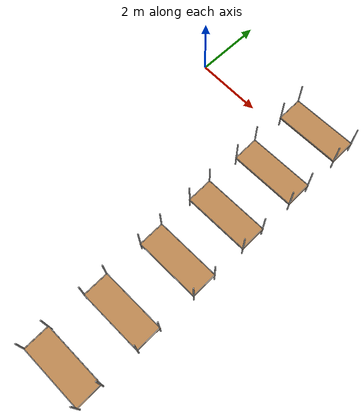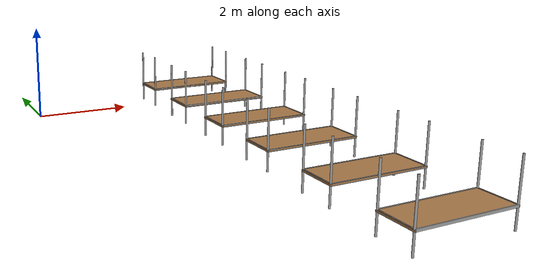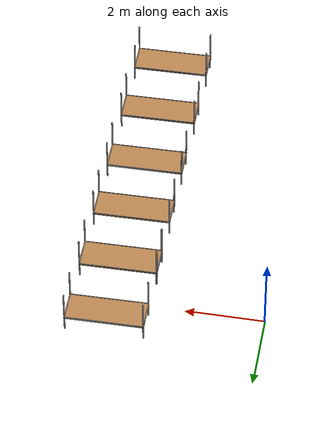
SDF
<sdf version="1.6">
 <world name="default">
  <gravity>0 0 -9.8</gravity>
  <physics default="0" name="default_physics" type="ode">
   <max_step_size>0.001</max_step_size>
   <real_time_factor>1</real_time_factor>
   <real_time_update_rate>1000</real_time_update_rate>
  </physics>
  <model name="pallet_0">
   <include><uri>model://warehouse_pallet3</uri></include>
   <pose>3.728 0.57943 0 0 0 1.588</pose>
  </model>
  <model name="pallet_1">
   <include><uri>model://warehouse_pallet3</uri></include>
   <pose>3.728 -4.827049 0 0 0 1.588</pose>
  </model>
  <model name="pallet_2">
   <include><uri>model://warehouse_pallet3</uri></include>
   <pose>3.728  -8.6651 0 0 0 1.588</pose>
  </model>
  <model name="pallet_3">
   <include><uri>model://warehouse_pallet3</uri></include>
   <pose>3.728  -1.242668 0 0 0 1.588</pose>
  </model>
  <model name="pallet_4">
   <include><uri>model://warehouse_pallet3</uri></include>
   <pose>3.728  -3.038551 0 0 0 1.588</pose>
  </model>
  <model name="pallet_5">
   <include><uri>model://warehouse_pallet3</uri></include>
   <pose>3.728  -6.750542 0 0 0 1.588</pose>
  </model>
  <light name="Warehouse_CeilingLight_003" type="point">
   <pose>0 0 18 0 0 0</pose>
   <diffuse>0.5 0.5 0.5 1</diffuse>
   <specular>0.2 0.2 0.2 1</specular>
   <attenuation>
    <range>80</range>
    <constant>0.01</constant>
    <linear>0.01</linear>
    <quadratic>0.001</quadratic>
   </attenuation>
   <direction>0.1 0.1 -1</direction>
  </light>
 </world>
</sdf>

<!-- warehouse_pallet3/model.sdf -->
<sdf version='1.6'>
  <model name='warehouse_pallet3'>
    <link name='warehouse_pallet::link'>
      <pose frame=''>0.009918 -0.125262 -0 0 -0 1.57</pose>
      <self_collide>0</self_collide>
      <inertial>
        <pose frame=''>0 0 0 0 -0 0</pose>
        <inertia>
          <ixx>0.267042</ixx>
          <ixy>0</ixy>
          <ixz>0</ixz>
          <iyy>0.937875</iyy>
          <iyz>0</iyz>
          <izz>1.20417</izz>
        </inertia>
        <mass>1</mass>
      </inertial>
      <enable_wind>0</enable_wind>
      <kinematic>0</kinematic>
      <gravity>1</gravity>
      <visual name='holding1_visual'>
        <pose frame=''>0 0.39 0.3 0 -0 0</pose>
        <geometry>
          <box>
            <size>1.98 0.02 0.05</size>
          </box>
        </geometry>
        <material>
          <script>
            <uri>file://media/materials/scripts/gazebo.material</uri>
            <name>Gazebo/Grey</name>
          </script>
          <shader type='pixel'>
            <normal_map>__default__</normal_map>
          </shader>
          <ambient>0.3 0.3 0.3 1</ambient>
          <diffuse>0.7 0.7 0.7 1</diffuse>
          <specular>0.01 0.01 0.01 1</specular>
          <emissive>0 0 0 1</emissive>
        </material>
        <transparency>0</transparency>
        <cast_shadows>1</cast_shadows>
      </visual>
      <visual name='front_left_leg'>
        <pose frame=''>0.98 0.38 0.5 0 -0 0</pose>
        <geometry>
          <cylinder>
            <radius>0.02</radius>
            <length>1.2</length>
          </cylinder>
        </geometry>
        <material>
          <script>
            <uri>file://media/materials/scripts/gazebo.material</uri>
            <name>Gazebo/Grey</name>
          </script>
          <shader type='pixel'>
            <normal_map>__default__</normal_map>
          </shader>
          <ambient>0.3 0.3 0.3 1</ambient>
          <diffuse>0.7 0.7 0.7 1</diffuse>
          <specular>0.01 0.01 0.01 1</specular>
          <emissive>0 0 0 1</emissive>
        </material>
        <transparency>0</transparency>
        <cast_shadows>1</cast_shadows>
      </visual>
      <visual name='front_right_leg'>
        <pose frame=''>0.98 -0.38 0.5 0 -0 0</pose>
        <geometry>
          <cylinder>
            <radius>0.02</radius>
            <length>1.2</length>
          </cylinder>
        </geometry>
        <material>
          <script>
            <uri>file://media/materials/scripts/gazebo.material</uri>
            <name>Gazebo/Grey</name>
          </script>
          <shader type='pixel'>
            <normal_map>__default__</normal_map>
          </shader>
          <ambient>0.3 0.3 0.3 1</ambient>
          <diffuse>0.7 0.7 0.7 1</diffuse>
          <specular>0.01 0.01 0.01 1</specular>
          <emissive>0 0 0 1</emissive>
        </material>
        <transparency>0</transparency>
        <cast_shadows>1</cast_shadows>
      </visual>
      <visual name='back_right_leg'>
        <pose frame=''>-0.98 -0.38 0.5 0 -0 0</pose>
        <geometry>
          <cylinder>
            <radius>0.02</radius>
            <length>1.2</length>
          </cylinder>
        </geometry>
        <material>
          <script>
            <uri>file://media/materials/scripts/gazebo.material</uri>
            <name>Gazebo/Grey</name>
          </script>
          <shader type='pixel'>
            <normal_map>__default__</normal_map>
          </shader>
          <ambient>0.3 0.3 0.3 1</ambient>
          <diffuse>0.7 0.7 0.7 1</diffuse>
          <specular>0.01 0.01 0.01 1</specular>
          <emissive>0 0 0 1</emissive>
        </material>
        <transparency>0</transparency>
        <cast_shadows>1</cast_shadows>
      </visual>
      <visual name='back_left_leg'>
        <pose frame=''>-0.98 0.38 0.5 0 -0 0</pose>
        <geometry>
          <cylinder>
            <radius>0.02</radius>
            <length>1.2</length>
          </cylinder>
        </geometry>
        <material>
          <script>
            <uri>file://media/materials/scripts/gazebo.material</uri>
            <name>Gazebo/Grey</name>
          </script>
          <shader type='pixel'>
            <normal_map>__default__</normal_map>
          </shader>
          <ambient>0.3 0.3 0.3 1</ambient>
          <diffuse>0.7 0.7 0.7 1</diffuse>
          <specular>0.01 0.01 0.01 1</specular>
          <emissive>0 0 0 1</emissive>
        </material>
        <transparency>0</transparency>
        <cast_shadows>1</cast_shadows>
      </visual>
      <visual name='visual1'>
        <pose frame=''>0 0 0.3 0 -0 0</pose>
        <geometry>
          <box>
            <size>2 0.8 0.03</size>
          </box>
        </geometry>
        <material>
          <script>
            <uri>file://media/materials/scripts/gazebo.material</uri>
            <name>Gazebo/Wood</name>
          </script>
          <shader type='pixel'>
            <normal_map>__default__</normal_map>
          </shader>
          <ambient>1 1 1 1</ambient>
          <diffuse>1 1 1 1</diffuse>
          <specular>0.2 0.2 0.2 1</specular>
          <emissive>0 0 0 1</emissive>
        </material>
        <transparency>0</transparency>
        <cast_shadows>1</cast_shadows>
      </visual>
      <visual name='holding2_visual'>
        <pose frame=''>0 -0.39 0.3 0 -0 0</pose>
        <geometry>
          <box>
            <size>1.98 0.02 0.05</size>
          </box>
        </geometry>
        <material>
          <script>
            <uri>file://media/materials/scripts/gazebo.material</uri>
            <name>Gazebo/Grey</name>
          </script>
          <shader type='pixel'>
            <normal_map>__default__</normal_map>
          </shader>
          <ambient>0.3 0.3 0.3 1</ambient>
          <diffuse>0.7 0.7 0.7 1</diffuse>
          <specular>0.01 0.01 0.01 1</specular>
          <emissive>0 0 0 1</emissive>
        </material>
        <transparency>0</transparency>
        <cast_shadows>1</cast_shadows>
      </visual>
      <visual name='holding3_visual'>
        <pose frame=''>0.98 0 0.3 0 -0 1.57</pose>
        <geometry>
          <box>
            <size>0.8 0.02 0.05</size>
          </box>
        </geometry>
        <material>
          <script>
            <uri>file://media/materials/scripts/gazebo.material</uri>
            <name>Gazebo/Grey</name>
          </script>
          <shader type='pixel'>
            <normal_map>__default__</normal_map>
          </shader>
          <ambient>0.3 0.3 0.3 1</ambient>
          <diffuse>0.7 0.7 0.7 1</diffuse>
          <specular>0.01 0.01 0.01 1</specular>
          <emissive>0 0 0 1</emissive>
        </material>
        <transparency>0</transparency>
        <cast_shadows>1</cast_shadows>
      </visual>
      <visual name='holding4_visual'>
        <pose frame=''>-0.98 0 0.3 0 -0 1.57</pose>
        <geometry>
          <box>
            <size>0.8 0.02 0.05</size>
          </box>
        </geometry>
        <material>
          <script>
            <uri>file://media/materials/scripts/gazebo.material</uri>
            <name>Gazebo/Grey</name>
          </script>
          <shader type='pixel'>
            <normal_map>__default__</normal_map>
          </shader>
          <ambient>0.3 0.3 0.3 1</ambient>
          <diffuse>0.7 0.7 0.7 1</diffuse>
          <specular>0.01 0.01 0.01 1</specular>
          <emissive>0 0 0 1</emissive>
        </material>
        <transparency>0</transparency>
        <cast_shadows>1</cast_shadows>
      </visual>
      <collision name='surface1'>
        <laser_retro>0</laser_retro>
        <max_contacts>20</max_contacts>
        <pose frame=''>0 0 0.3 0 -0 0</pose>
        <geometry>
          <box>
            <size>2 0.8 0.03</size>
          </box>
        </geometry>
        <surface>
          <friction>
            <ode>
              <mu>inf</mu>
              <mu2>inf</mu2>
              <fdir1>0 0 0</fdir1>
              <slip1>0</slip1>
              <slip2>0</slip2>
            </ode>
            <torsional>
              <coefficient>1</coefficient>
              <patch_radius>0</patch_radius>
              <surface_radius>0</surface_radius>
              <use_patch_radius>1</use_patch_radius>
              <ode>
                <slip>0</slip>
              </ode>
            </torsional>
          </friction>
          <bounce>
            <restitution_coefficient>0</restitution_coefficient>
            <threshold>1e+06</threshold>
          </bounce>
          <contact>
            <collide_without_contact>0</collide_without_contact>
            <collide_without_contact_bitmask>1</collide_without_contact_bitmask>
            <collide_bitmask>1</collide_bitmask>
            <ode>
              <soft_cfm>0</soft_cfm>
              <soft_erp>0.2</soft_erp>
              <kp>1e+13</kp>
              <kd>1</kd>
              <max_vel>0.01</max_vel>
              <min_depth>0.001</min_depth>
            </ode>
            <bullet>
              <split_impulse>1</split_impulse>
              <split_impulse_penetration_threshold>-0.01</split_impulse_penetration_threshold>
              <soft_cfm>0</soft_cfm>
              <soft_erp>0.2</soft_erp>
              <kp>1e+13</kp>
              <kd>1</kd>
            </bullet>
          </contact>
        </surface>
      </collision>
      <collision name='holding1_collision'>
        <laser_retro>0</laser_retro>
        <max_contacts>10</max_contacts>
        <pose frame=''>0 0.39 0.3 0 -0 0</pose>
        <geometry>
          <box>
            <size>1.98 0.02 0.05</size>
          </box>
        </geometry>
        <surface>
          <friction>
            <ode>
              <mu>1e+09</mu>
              <mu2>1e+09</mu2>
              <fdir1>0 0 0</fdir1>
              <slip1>0</slip1>
              <slip2>0</slip2>
            </ode>
            <torsional>
              <coefficient>1</coefficient>
              <patch_radius>0</patch_radius>
              <surface_radius>0</surface_radius>
              <use_patch_radius>1</use_patch_radius>
              <ode>
                <slip>0</slip>
              </ode>
            </torsional>
          </friction>
          <bounce>
            <restitution_coefficient>0</restitution_coefficient>
            <threshold>1e+06</threshold>
          </bounce>
          <contact>
            <collide_without_contact>0</collide_without_contact>
            <collide_without_contact_bitmask>1</collide_without_contact_bitmask>
            <collide_bitmask>1</collide_bitmask>
            <ode>
              <soft_cfm>0</soft_cfm>
              <soft_erp>0.2</soft_erp>
              <kp>1e+13</kp>
              <kd>1</kd>
              <max_vel>0.01</max_vel>
              <min_depth>0</min_depth>
            </ode>
            <bullet>
              <split_impulse>1</split_impulse>
              <split_impulse_penetration_threshold>-0.01</split_impulse_penetration_threshold>
              <soft_cfm>0</soft_cfm>
              <soft_erp>0.2</soft_erp>
              <kp>1e+13</kp>
              <kd>1</kd>
            </bullet>
          </contact>
        </surface>
      </collision>
      <collision name='holding2_collision'>
        <laser_retro>0</laser_retro>
        <max_contacts>10</max_contacts>
        <pose frame=''>0 -0.4 0.3 0 -0 0</pose>
        <geometry>
          <box>
            <size>1.98 0.02 0.05</size>
          </box>
        </geometry>
        <surface>
          <friction>
            <ode>
              <mu>1e+09</mu>
              <mu2>1e+09</mu2>
              <fdir1>0 0 0</fdir1>
              <slip1>0</slip1>
              <slip2>0</slip2>
            </ode>
            <torsional>
              <coefficient>1</coefficient>
              <patch_radius>0</patch_radius>
              <surface_radius>0</surface_radius>
              <use_patch_radius>1</use_patch_radius>
              <ode>
                <slip>0</slip>
              </ode>
            </torsional>
          </friction>
          <bounce>
            <restitution_coefficient>0</restitution_coefficient>
            <threshold>1e+06</threshold>
          </bounce>
          <contact>
            <collide_without_contact>0</collide_without_contact>
            <collide_without_contact_bitmask>1</collide_without_contact_bitmask>
            <collide_bitmask>1</collide_bitmask>
            <ode>
              <soft_cfm>0</soft_cfm>
              <soft_erp>0.2</soft_erp>
              <kp>1e+13</kp>
              <kd>1</kd>
              <max_vel>0.01</max_vel>
              <min_depth>0</min_depth>
            </ode>
            <bullet>
              <split_impulse>1</split_impulse>
              <split_impulse_penetration_threshold>-0.01</split_impulse_penetration_threshold>
              <soft_cfm>0</soft_cfm>
              <soft_erp>0.2</soft_erp>
              <kp>1e+13</kp>
              <kd>1</kd>
            </bullet>
          </contact>
        </surface>
      </collision>
      <collision name='holding4_collision'>
        <laser_retro>0</laser_retro>
        <max_contacts>10</max_contacts>
        <pose frame=''>-0.98 0 0.3 0 -0 1.57</pose>
        <geometry>
          <box>
            <size>0.8 0.02 0.05</size>
          </box>
        </geometry>
        <surface>
          <friction>
            <ode>
              <mu>1e+09</mu>
              <mu2>1e+09</mu2>
              <fdir1>0 0 0</fdir1>
              <slip1>0</slip1>
              <slip2>0</slip2>
            </ode>
            <torsional>
              <coefficient>1</coefficient>
              <patch_radius>0</patch_radius>
              <surface_radius>0</surface_radius>
              <use_patch_radius>1</use_patch_radius>
              <ode>
                <slip>0</slip>
              </ode>
            </torsional>
          </friction>
          <bounce>
            <restitution_coefficient>0</restitution_coefficient>
            <threshold>1e+06</threshold>
          </bounce>
          <contact>
            <collide_without_contact>0</collide_without_contact>
            <collide_without_contact_bitmask>1</collide_without_contact_bitmask>
            <collide_bitmask>1</collide_bitmask>
            <ode>
              <soft_cfm>0</soft_cfm>
              <soft_erp>0.2</soft_erp>
              <kp>1e+13</kp>
              <kd>1</kd>
              <max_vel>0.01</max_vel>
              <min_depth>0</min_depth>
            </ode>
            <bullet>
              <split_impulse>1</split_impulse>
              <split_impulse_penetration_threshold>-0.01</split_impulse_penetration_threshold>
              <soft_cfm>0</soft_cfm>
              <soft_erp>0.2</soft_erp>
              <kp>1e+13</kp>
              <kd>1</kd>
            </bullet>
          </contact>
        </surface>
      </collision>
      <collision name='holding3_collision'>
        <laser_retro>0</laser_retro>
        <max_contacts>10</max_contacts>
        <pose frame=''>0.98 0 0.3 0 -0 1.57</pose>
        <geometry>
          <box>
            <size>0.8 0.02 0.05</size>
          </box>
        </geometry>
        <surface>
          <friction>
            <ode>
              <mu>1e+15</mu>
              <mu2>1e+15</mu2>
              <fdir1>0 0 0</fdir1>
              <slip1>0</slip1>
              <slip2>0</slip2>
            </ode>
            <torsional>
              <coefficient>1</coefficient>
              <patch_radius>0</patch_radius>
              <surface_radius>0</surface_radius>
              <use_patch_radius>1</use_patch_radius>
              <ode>
                <slip>0</slip>
              </ode>
            </torsional>
          </friction>
          <bounce>
            <restitution_coefficient>0</restitution_coefficient>
            <threshold>1e+06</threshold>
          </bounce>
          <contact>
            <collide_without_contact>0</collide_without_contact>
            <collide_without_contact_bitmask>1</collide_without_contact_bitmask>
            <collide_bitmask>1</collide_bitmask>
            <ode>
              <soft_cfm>0</soft_cfm>
              <soft_erp>0.2</soft_erp>
              <kp>1e+13</kp>
              <kd>1</kd>
              <max_vel>0.01</max_vel>
              <min_depth>0</min_depth>
            </ode>
            <bullet>
              <split_impulse>1</split_impulse>
              <split_impulse_penetration_threshold>-0.01</split_impulse_penetration_threshold>
              <soft_cfm>0</soft_cfm>
              <soft_erp>0.2</soft_erp>
              <kp>1e+13</kp>
              <kd>1</kd>
            </bullet>
          </contact>
        </surface>
      </collision>
      <collision name='back_right_leg'>
        <laser_retro>0</laser_retro>
        <max_contacts>10</max_contacts>
        <pose frame=''>-0.98 -0.38 0.5 0 -0 0</pose>
        <geometry>
          <cylinder>
            <radius>0.02</radius>
            <length>1.2</length>
          </cylinder>
        </geometry>
        <surface>
          <friction>
            <ode>
              <mu>0.1</mu>
              <mu2>0.1</mu2>
              <fdir1>0 0 0</fdir1>
              <slip1>0</slip1>
              <slip2>0</slip2>
            </ode>
            <torsional>
              <coefficient>1</coefficient>
              <patch_radius>0</patch_radius>
              <surface_radius>0</surface_radius>
              <use_patch_radius>1</use_patch_radius>
              <ode>
                <slip>0</slip>
              </ode>
            </torsional>
          </friction>
          <bounce>
            <restitution_coefficient>0</restitution_coefficient>
            <threshold>1e+06</threshold>
          </bounce>
          <contact>
            <collide_without_contact>0</collide_without_contact>
            <collide_without_contact_bitmask>1</collide_without_contact_bitmask>
            <collide_bitmask>1</collide_bitmask>
            <ode>
              <soft_cfm>0</soft_cfm>
              <soft_erp>0.2</soft_erp>
              <kp>1e+13</kp>
              <kd>1</kd>
              <max_vel>0.01</max_vel>
              <min_depth>0</min_depth>
            </ode>
            <bullet>
              <split_impulse>1</split_impulse>
              <split_impulse_penetration_threshold>-0.01</split_impulse_penetration_threshold>
              <soft_cfm>0</soft_cfm>
              <soft_erp>0.2</soft_erp>
              <kp>1e+13</kp>
              <kd>1</kd>
            </bullet>
          </contact>
        </surface>
      </collision>
      <collision name='front_right_leg'>
        <laser_retro>0</laser_retro>
        <max_contacts>10</max_contacts>
        <pose frame=''>0.98 -0.38 0.5 0 -0 0</pose>
        <geometry>
          <cylinder>
            <radius>0.02</radius>
            <length>1</length>
          </cylinder>
        </geometry>
        <surface>
          <friction>
            <ode>
              <mu>0.1</mu>
              <mu2>0.1</mu2>
              <fdir1>0 0 0</fdir1>
              <slip1>0</slip1>
              <slip2>0</slip2>
            </ode>
            <torsional>
              <coefficient>1</coefficient>
              <patch_radius>0</patch_radius>
              <surface_radius>0</surface_radius>
              <use_patch_radius>1</use_patch_radius>
              <ode>
                <slip>0</slip>
              </ode>
            </torsional>
          </friction>
          <bounce>
            <restitution_coefficient>0</restitution_coefficient>
            <threshold>1e+06</threshold>
          </bounce>
          <contact>
            <collide_without_contact>0</collide_without_contact>
            <collide_without_contact_bitmask>1</collide_without_contact_bitmask>
            <collide_bitmask>1</collide_bitmask>
            <ode>
              <soft_cfm>0</soft_cfm>
              <soft_erp>0.2</soft_erp>
              <kp>1e+13</kp>
              <kd>1</kd>
              <max_vel>0.01</max_vel>
              <min_depth>0</min_depth>
            </ode>
            <bullet>
              <split_impulse>1</split_impulse>
              <split_impulse_penetration_threshold>-0.01</split_impulse_penetration_threshold>
              <soft_cfm>0</soft_cfm>
              <soft_erp>0.2</soft_erp>
              <kp>1e+13</kp>
              <kd>1</kd>
            </bullet>
          </contact>
        </surface>
      </collision>
      <collision name='front_left_leg'>
        <laser_retro>0</laser_retro>
        <max_contacts>10</max_contacts>
        <pose frame=''>0.98 0.38 0.5 0 -0 0</pose>
        <geometry>
          <cylinder>
            <radius>0.02</radius>
            <length>1.2</length>
          </cylinder>
        </geometry>
        <surface>
          <friction>
            <ode>
              <mu>0.1</mu>
              <mu2>0.1</mu2>
              <fdir1>0 0 0</fdir1>
              <slip1>0</slip1>
              <slip2>0</slip2>
            </ode>
            <torsional>
              <coefficient>1</coefficient>
              <patch_radius>0</patch_radius>
              <surface_radius>0</surface_radius>
              <use_patch_radius>1</use_patch_radius>
              <ode>
                <slip>0</slip>
              </ode>
            </torsional>
          </friction>
          <bounce>
            <restitution_coefficient>0</restitution_coefficient>
            <threshold>1e+06</threshold>
          </bounce>
          <contact>
            <collide_without_contact>0</collide_without_contact>
            <collide_without_contact_bitmask>1</collide_without_contact_bitmask>
            <collide_bitmask>1</collide_bitmask>
            <ode>
              <soft_cfm>0</soft_cfm>
              <soft_erp>0.2</soft_erp>
              <kp>1e+13</kp>
              <kd>1</kd>
              <max_vel>0.01</max_vel>
              <min_depth>0</min_depth>
            </ode>
            <bullet>
              <split_impulse>1</split_impulse>
              <split_impulse_penetration_threshold>-0.01</split_impulse_penetration_threshold>
              <soft_cfm>0</soft_cfm>
              <soft_erp>0.2</soft_erp>
              <kp>1e+13</kp>
              <kd>1</kd>
            </bullet>
          </contact>
        </surface>
      </collision>
      <collision name='back_left_leg'>
        <laser_retro>0</laser_retro>
        <max_contacts>10</max_contacts>
        <pose frame=''>-0.98 0.38 0.5 0 -0 0</pose>
        <geometry>
          <cylinder>
            <radius>0.02</radius>
            <length>1.2</length>
          </cylinder>
        </geometry>
        <surface>
          <friction>
            <ode>
              <mu>0.1</mu>
              <mu2>0.1</mu2>
              <fdir1>0 0 0</fdir1>
              <slip1>0</slip1>
              <slip2>0</slip2>
            </ode>
            <torsional>
              <coefficient>1</coefficient>
              <patch_radius>0</patch_radius>
              <surface_radius>0</surface_radius>
              <use_patch_radius>1</use_patch_radius>
              <ode>
                <slip>0</slip>
              </ode>
            </torsional>
          </friction>
          <bounce>
            <restitution_coefficient>0</restitution_coefficient>
            <threshold>1e+06</threshold>
          </bounce>
          <contact>
            <collide_without_contact>0</collide_without_contact>
            <collide_without_contact_bitmask>1</collide_without_contact_bitmask>
            <collide_bitmask>1</collide_bitmask>
            <ode>
              <soft_cfm>0</soft_cfm>
              <soft_erp>0.2</soft_erp>
              <kp>1e+13</kp>
              <kd>1</kd>
              <max_vel>0.01</max_vel>
              <min_depth>0</min_depth>
            </ode>
            <bullet>
              <split_impulse>1</split_impulse>
              <split_impulse_penetration_threshold>-0.01</split_impulse_penetration_threshold>
              <soft_cfm>0</soft_cfm>
              <soft_erp>0.2</soft_erp>
              <kp>1e+13</kp>
              <kd>1</kd>
            </bullet>
          </contact>
        </surface>
      </collision>
    </link>
    <static>0</static>
    <allow_auto_disable>1</allow_auto_disable>
  </model>
</sdf>
